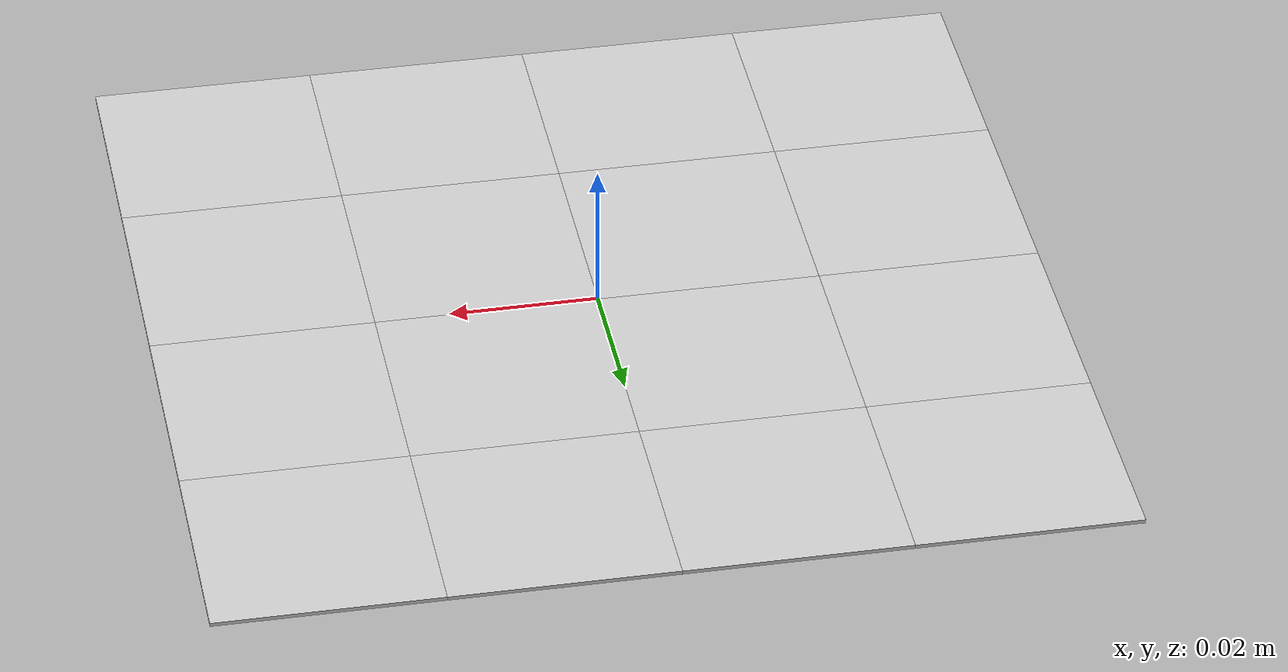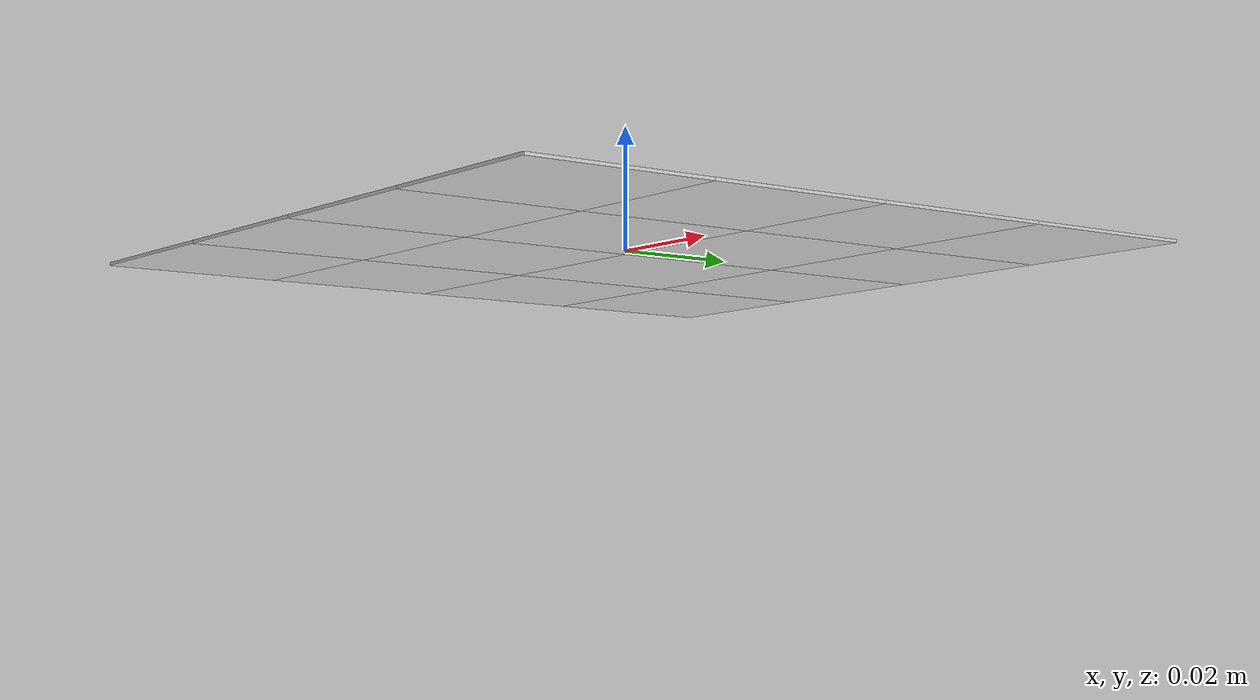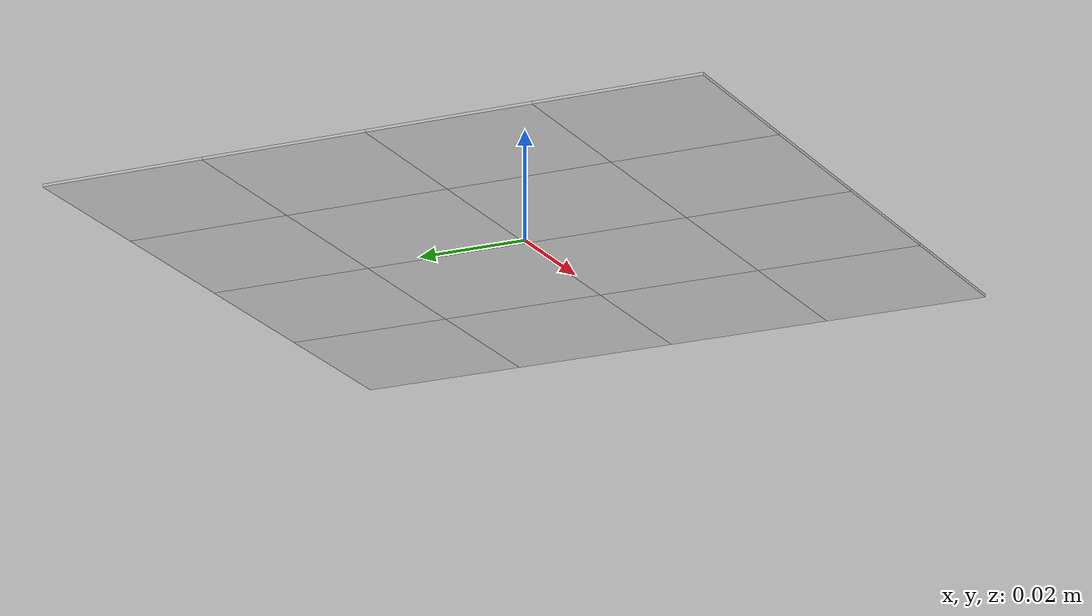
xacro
<?xml version="1.0"?>
<robot name="flat_sheet" xmlns:xacro="http://www.ros.org/wiki/xacro">
  <xacro:include filename="aruco_marker.xacro"/>

  <material name="gray">
    <color rgba="0.8 0.8 0.8 1.0"/>
  </material>

  <link name="tool_frame"/>

  <link name="row1"/>
  <joint name="row1_joint" type="fixed">
    <origin xyz="-0.045 0.045 0" rpy="0 0 0"/>
    <parent link="tool_frame"/>
    <child link="row1"/>
  </joint>

  <xacro:aruco_marker id="120" marker_size="0.03" parent="row1">
    <origin xyz="0.0 0.0 0.0" rpy="0.0 0.0 0.0"/>
    <material name="gray"/>
  </xacro:aruco_marker>

  <xacro:aruco_marker id="121" marker_size="0.03" parent="row1">
    <origin xyz="0.03 0.0 0.0" rpy="0.0 0.0 0.0"/>
    <material name="gray"/>
  </xacro:aruco_marker>

  <xacro:aruco_marker id="122" marker_size="0.03" parent="row1">
    <origin xyz="0.06 0.0 0.0" rpy="0.0 0.0 0.0"/>
    <material name="gray"/>
  </xacro:aruco_marker>

  <xacro:aruco_marker id="123" marker_size="0.03" parent="row1">
    <origin xyz="0.09 0.0 0.0" rpy="0.0 0.0 0.0"/>
    <material name="gray"/>
  </xacro:aruco_marker>

  <link name="row2"/>
  <joint name="row2_joint" type="fixed">
    <origin xyz="-0.045 0.015 0" rpy="0 0 0"/>
    <parent link="tool_frame"/>
    <child link="row2"/>
  </joint>

  <xacro:aruco_marker id="130" marker_size="0.03" parent="row2">
    <origin xyz="0.0 0.0 0.0" rpy="0.0 0.0 0.0"/>
    <material name="gray"/>
  </xacro:aruco_marker>

  <xacro:aruco_marker id="131" marker_size="0.03" parent="row2">
    <origin xyz="0.03 0.0 0.0" rpy="0.0 0.0 0.0"/>
    <material name="gray"/>
  </xacro:aruco_marker>

  <xacro:aruco_marker id="132" marker_size="0.03" parent="row2">
    <origin xyz="0.06 0.0 0.0" rpy="0.0 0.0 0.0"/>
    <material name="gray"/>
  </xacro:aruco_marker>

  <xacro:aruco_marker id="133" marker_size="0.03" parent="row2">
    <origin xyz="0.09 0.0 0.0" rpy="0.0 0.0 0.0"/>
    <material name="gray"/>
  </xacro:aruco_marker>

  <link name="row3"/>
  <joint name="row3_joint" type="fixed">
    <origin xyz="-0.045 -0.015 0" rpy="0 0 0"/>
    <parent link="tool_frame"/>
    <child link="row3"/>
  </joint>

  <xacro:aruco_marker id="140" marker_size="0.03" parent="row3">
    <origin xyz="0.0 0.0 0.0" rpy="0.0 0.0 0.0"/>
    <material name="gray"/>
  </xacro:aruco_marker>

  <xacro:aruco_marker id="141" marker_size="0.03" parent="row3">
    <origin xyz="0.03 0.0 0.0" rpy="0.0 0.0 0.0"/>
    <material name="gray"/>
  </xacro:aruco_marker>

  <xacro:aruco_marker id="142" marker_size="0.03" parent="row3">
    <origin xyz="0.06 0.0 0.0" rpy="0.0 0.0 0.0"/>
    <material name="gray"/>
  </xacro:aruco_marker>

  <xacro:aruco_marker id="143" marker_size="0.03" parent="row3">
    <origin xyz="0.09 0.0 0.0" rpy="0.0 0.0 0.0"/>
    <material name="gray"/>
  </xacro:aruco_marker>

  <link name="row4"/>
  <joint name="row4_joint" type="fixed">
    <origin xyz="-0.045 -0.045 0" rpy="0 0 0"/>
    <parent link="tool_frame"/>
    <child link="row4"/>
  </joint>

  <xacro:aruco_marker id="150" marker_size="0.03" parent="row4">
    <origin xyz="0.0 0.0 0.0" rpy="0.0 0.0 0.0"/>
    <material name="gray"/>
  </xacro:aruco_marker>

  <xacro:aruco_marker id="151" marker_size="0.03" parent="row4">
    <origin xyz="0.03 0.0 0.0" rpy="0.0 0.0 0.0"/>
    <material name="gray"/>
  </xacro:aruco_marker>

  <xacro:aruco_marker id="152" marker_size="0.03" parent="row4">
    <origin xyz="0.06 0.0 0.0" rpy="0.0 0.0 0.0"/>
    <material name="gray"/>
  </xacro:aruco_marker>

  <xacro:aruco_marker id="153" marker_size="0.03" parent="row4">
    <origin xyz="0.09 0.0 0.0" rpy="0.0 0.0 0.0"/>
    <material name="gray"/>
  </xacro:aruco_marker>
</robot>

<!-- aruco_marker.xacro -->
<robot name="aruco_marker" xmlns:xacro="http://www.ros.org/wiki/xacro">
  <xacro:macro name="aruco_marker" params="id parent marker_size:=0.0254 marker_thickness:=0.0005 *origin *material">
    <link name="aruco_${id}">
      <visual>
        <origin xyz="0.0 0.0 ${-0.5 * marker_thickness}"/>
        <geometry>
          <box size="${marker_size} ${marker_size} ${marker_thickness}"/>
        </geometry>
        <xacro:insert_block name="material"/>
      </visual>
    </link>

    <joint name="aruco_${id}_joint" type="fixed">
      <xacro:insert_block name="origin"/>
      <parent link="${parent}"/>
      <child link="aruco_${id}"/>
    </joint>
  </xacro:macro>
</robot>
